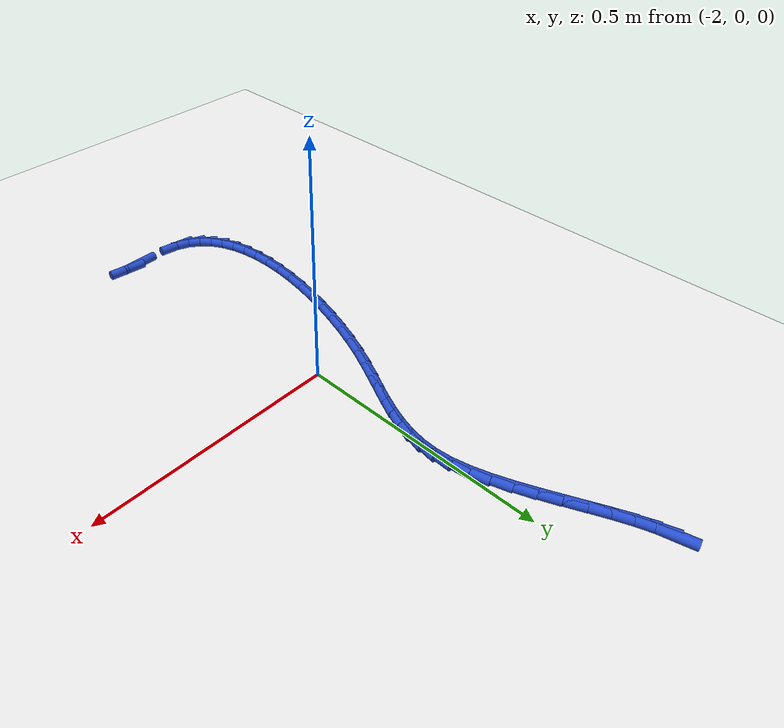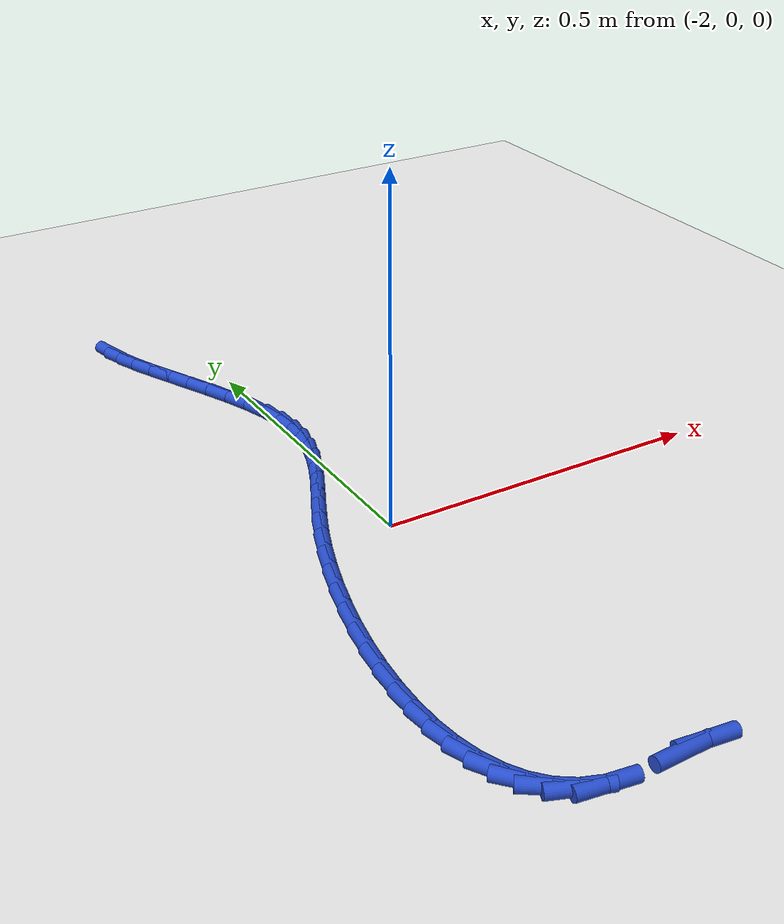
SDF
<sdf version="1.6">
 <world name="default">
  <model name="ground_plane">
   <static>1</static>
   <link name="link">
    <collision name="collision">
     <geometry><plane><normal>0 0 1</normal><size>100 100</size></plane></geometry>
     <surface><friction><ode><mu>100</mu><mu2>50</mu2></ode></friction></surface>
    </collision>
    <visual name="visual">
     <cast_shadows>0</cast_shadows>
     <geometry><plane><normal>0 0 1</normal><size>100 100</size></plane></geometry>
     <material>
      <script><uri>file://media/materials/scripts/gazebo.material</uri><name>Gazebo/WhiteGlow</name></script>
     </material>
    </visual>
   </link>
  </model>
  <model name="line">
   <link name="link_100">
    <pose>-2.1249075774094432 0.6737634439343126 0.01 0 1.57 -1.3303432976671499</pose>
    <collision name="collision">
     <geometry><cylinder><radius>0.01</radius><length>0.08</length></cylinder></geometry>
    </collision>
    <visual name="visual">
     <material>
      <script><name>Gazebo/Blue</name><uri>file://media/materials/scripts/gazebo.material</uri></script>
     </material>
     <geometry><cylinder><radius>0.01</radius><length>0.08</length></cylinder></geometry>
    </visual>
   </link>
   <link name="link_101">
    <pose>-2.118199168348817 0.6464041720958057 0.01 0 1.57 -1.2358035847093622</pose>
    <collision name="collision">
     <geometry><cylinder><radius>0.01</radius><length>0.08</length></cylinder></geometry>
    </collision>
    <visual name="visual">
     <material>
      <script><name>Gazebo/Blue</name><uri>file://media/materials/scripts/gazebo.material</uri></script>
     </material>
     <geometry><cylinder><radius>0.01</radius><length>0.08</length></cylinder></geometry>
    </visual>
   </link>
   <link name="link_102">
    <pose>-2.107620366164614 0.6160151809599722 0.01 0 1.57 -1.1809138422317131</pose>
    <collision name="collision">
     <geometry><cylinder><radius>0.01</radius><length>0.08</length></cylinder></geometry>
    </collision>
    <visual name="visual">
     <material>
      <script><name>Gazebo/Blue</name><uri>file://media/materials/scripts/gazebo.material</uri></script>
     </material>
     <geometry><cylinder><radius>0.01</radius><length>0.08</length></cylinder></geometry>
    </visual>
   </link>
   <link name="link_103">
    <pose>-2.094113227553329 0.5831445026352073 0.01 0 1.57 -1.1519765177857066</pose>
    <collision name="collision">
     <geometry><cylinder><radius>0.01</radius><length>0.08</length></cylinder></geometry>
    </collision>
    <visual name="visual">
     <material>
      <script><name>Gazebo/Blue</name><uri>file://media/materials/scripts/gazebo.material</uri></script>
     </material>
     <geometry><cylinder><radius>0.01</radius><length>0.08</length></cylinder></geometry>
    </visual>
   </link>
   <link name="link_104">
    <pose>-2.078619809211457 0.5483401692299068 0.01 0 1.57 -1.1421631834450297</pose>
    <collision name="collision">
     <geometry><cylinder><radius>0.01</radius><length>0.08</length></cylinder></geometry>
    </collision>
    <visual name="visual">
     <material>
      <script><name>Gazebo/Blue</name><uri>file://media/materials/scripts/gazebo.material</uri></script>
     </material>
     <geometry><cylinder><radius>0.01</radius><length>0.08</length></cylinder></geometry>
    </visual>
   </link>
   <link name="link_105">
    <pose>-2.0620821678354933 0.5121502128524668 0.01 0 1.57 -1.148449832072766</pose>
    <collision name="collision">
     <geometry><cylinder><radius>0.01</radius><length>0.08</length></cylinder></geometry>
    </collision>
    <visual name="visual">
     <material>
      <script><name>Gazebo/Blue</name><uri>file://media/materials/scripts/gazebo.material</uri></script>
     </material>
     <geometry><cylinder><radius>0.01</radius><length>0.08</length></cylinder></geometry>
    </visual>
   </link>
   <link name="link_106">
    <pose>-2.0454423601219314 0.4751226656112829 0.01 0 1.57 -1.1702849762444776</pose>
    <collision name="collision">
     <geometry><cylinder><radius>0.01</radius><length>0.08</length></cylinder></geometry>
    </collision>
    <visual name="visual">
     <material>
      <script><name>Gazebo/Blue</name><uri>file://media/materials/scripts/gazebo.material</uri></script>
     </material>
     <geometry><cylinder><radius>0.01</radius><length>0.08</length></cylinder></geometry>
    </visual>
   </link>
   <link name="link_107">
    <pose>-2.029642442767267 0.4378055596147507 0.01 0 1.57 -1.209166583709641</pose>
    <collision name="collision">
     <geometry><cylinder><radius>0.01</radius><length>0.08</length></cylinder></geometry>
    </collision>
    <visual name="visual">
     <material>
      <script><name>Gazebo/Blue</name><uri>file://media/materials/scripts/gazebo.material</uri></script>
     </material>
     <geometry><cylinder><radius>0.01</radius><length>0.08</length></cylinder></geometry>
    </visual>
   </link>
   <link name="link_108">
    <pose>-2.015624472467994 0.4007469269712654 0.01 0 1.57 -1.2687868199660628</pose>
    <collision name="collision">
     <geometry><cylinder><radius>0.01</radius><length>0.08</length></cylinder></geometry>
    </collision>
    <visual name="visual">
     <material>
      <script><name>Gazebo/Blue</name><uri>file://media/materials/scripts/gazebo.material</uri></script>
     </material>
     <geometry><cylinder><radius>0.01</radius><length>0.08</length></cylinder></geometry>
    </visual>
   </link>
   <link name="link_109">
    <pose>-2.004330505920607 0.36449479978922356 0.01 0 1.57 -1.355601116761794</pose>
    <collision name="collision">
     <geometry><cylinder><radius>0.01</radius><length>0.08</length></cylinder></geometry>
    </collision>
    <visual name="visual">
     <material>
      <script><name>Gazebo/Blue</name><uri>file://media/materials/scripts/gazebo.material</uri></script>
     </material>
     <geometry><cylinder><radius>0.01</radius><length>0.08</length></cylinder></geometry>
    </visual>
   </link>
   <link name="link_110">
    <pose>-1.9967025998216017 0.3295972101770207 0.01 0 1.57 -1.4762945306453026</pose>
    <collision name="collision">
     <geometry><cylinder><radius>0.01</radius><length>0.08</length></cylinder></geometry>
    </collision>
    <visual name="visual">
     <material>
      <script><name>Gazebo/Blue</name><uri>file://media/materials/scripts/gazebo.material</uri></script>
     </material>
     <geometry><cylinder><radius>0.01</radius><length>0.08</length></cylinder></geometry>
    </visual>
   </link>
   <link name="link_111">
    <pose>-1.9935679026583302 0.29652524577395184 0.01 0 1.57 1.5310366832754667</pose>
    <collision name="collision">
     <geometry><cylinder><radius>0.01</radius><length>0.08</length></cylinder></geometry>
    </collision>
    <visual name="visual">
     <material>
      <script><name>Gazebo/Blue</name><uri>file://media/materials/scripts/gazebo.material</uri></script>
     </material>
     <geometry><cylinder><radius>0.01</radius><length>0.08</length></cylinder></geometry>
    </visual>
   </link>
   <link name="link_112">
    <pose>-1.994817105990353 0.2651229269133066 0.01 0 1.57 1.404521503492447</pose>
    <collision name="collision">
     <geometry><cylinder><radius>0.01</radius><length>0.08</length></cylinder></geometry>
    </collision>
    <visual name="visual">
     <material>
      <script><name>Gazebo/Blue</name><uri>file://media/materials/scripts/gazebo.material</uri></script>
     </material>
     <geometry><cylinder><radius>0.01</radius><length>0.08</length></cylinder></geometry>
    </visual>
   </link>
   <link name="link_113">
    <pose>-1.9998844443393111 0.2349286226201526 0.01 0 1.57 1.2955645577942039</pose>
    <collision name="collision">
     <geometry><cylinder><radius>0.01</radius><length>0.08</length></cylinder></geometry>
    </collision>
    <visual name="visual">
     <material>
      <script><name>Gazebo/Blue</name><uri>file://media/materials/scripts/gazebo.material</uri></script>
     </material>
     <geometry><cylinder><radius>0.01</radius><length>0.08</length></cylinder></geometry>
    </visual>
   </link>
   <link name="link_114">
    <pose>-2.0082010835967683 0.205478647113255 0.01 0 1.57 1.210265350348706</pose>
    <collision name="collision">
     <geometry><cylinder><radius>0.01</radius><length>0.08</length></cylinder></geometry>
    </collision>
    <visual name="visual">
     <material>
      <script><name>Gazebo/Blue</name><uri>file://media/materials/scripts/gazebo.material</uri></script>
     </material>
     <geometry><cylinder><radius>0.01</radius><length>0.08</length></cylinder></geometry>
    </visual>
   </link>
   <link name="link_115">
    <pose>-2.0191981896542877 0.17630931461137922 0.01 0 1.57 1.150774348342374</pose>
    <collision name="collision">
     <geometry><cylinder><radius>0.01</radius><length>0.08</length></cylinder></geometry>
    </collision>
    <visual name="visual">
     <material>
      <script><name>Gazebo/Blue</name><uri>file://media/materials/scripts/gazebo.material</uri></script>
     </material>
     <geometry><cylinder><radius>0.01</radius><length>0.08</length></cylinder></geometry>
    </visual>
   </link>
   <link name="link_116">
    <pose>-2.0323069284034343 0.14695693933329176 0.01 0 1.57 1.1164723799438698</pose>
    <collision name="collision">
     <geometry><cylinder><radius>0.01</radius><length>0.08</length></cylinder></geometry>
    </collision>
    <visual name="visual">
     <material>
      <script><name>Gazebo/Blue</name><uri>file://media/materials/scripts/gazebo.material</uri></script>
     </material>
     <geometry><cylinder><radius>0.01</radius><length>0.08</length></cylinder></geometry>
    </visual>
   </link>
   <link name="link_117">
    <pose>-2.0469584657357722 0.11695783549775801 0.01 0 1.57 1.1053311813615219</pose>
    <collision name="collision">
     <geometry><cylinder><radius>0.01</radius><length>0.08</length></cylinder></geometry>
    </collision>
    <visual name="visual">
     <material>
      <script><name>Gazebo/Blue</name><uri>file://media/materials/scripts/gazebo.material</uri></script>
     </material>
     <geometry><cylinder><radius>0.01</radius><length>0.08</length></cylinder></geometry>
    </visual>
   </link>
   <link name="link_118">
    <pose>-2.0625839675428645 0.0858483173235437 0.01 0 1.57 1.114794394884622</pose>
    <collision name="collision">
     <geometry><cylinder><radius>0.01</radius><length>0.08</length></cylinder></geometry>
    </collision>
    <visual name="visual">
     <material>
      <script><name>Gazebo/Blue</name><uri>file://media/materials/scripts/gazebo.material</uri></script>
     </material>
     <geometry><cylinder><radius>0.01</radius><length>0.08</length></cylinder></geometry>
    </visual>
   </link>
   <link name="link_119">
    <pose>-2.078614599716275 0.05316469902941414 0.01 0 1.57 1.1421544162268218</pose>
    <collision name="collision">
     <geometry><cylinder><radius>0.01</radius><length>0.08</length></cylinder></geometry>
    </collision>
    <visual name="visual">
     <material>
      <script><name>Gazebo/Blue</name><uri>file://media/materials/scripts/gazebo.material</uri></script>
     </material>
     <geometry><cylinder><radius>0.01</radius><length>0.08</length></cylinder></geometry>
    </visual>
   </link>
   <link name="link_120">
    <pose>-2.094481528147568 0.018443294834135898 0.01 0 1.57 1.1819103346248963</pose>
    <collision name="collision">
     <geometry><cylinder><radius>0.01</radius><length>0.08</length></cylinder></geometry>
    </collision>
    <visual name="visual">
     <material>
      <script><name>Gazebo/Blue</name><uri>file://media/materials/scripts/gazebo.material</uri></script>
     </material>
     <geometry><cylinder><radius>0.01</radius><length>0.08</length></cylinder></geometry>
    </visual>
   </link>
   <link name="link_121">
    <pose>-2.109671284036992 -0.018627198270038794 0.01 0 1.57 1.2216963179029865</pose>
    <collision name="collision">
     <geometry><cylinder><radius>0.01</radius><length>0.08</length></cylinder></geometry>
    </collision>
    <visual name="visual">
     <material>
      <script><name>Gazebo/Blue</name><uri>file://media/materials/scripts/gazebo.material</uri></script>
     </material>
     <geometry><cylinder><radius>0.01</radius><length>0.08</length></cylinder></geometry>
    </visual>
   </link>
   <link name="link_122">
    <pose>-2.1239018234899416 -0.057721129036674326 0.01 0 1.57 1.2599854707291316</pose>
    <collision name="collision">
     <geometry><cylinder><radius>0.01</radius><length>0.08</length></cylinder></geometry>
    </collision>
    <visual name="visual">
     <material>
      <script><name>Gazebo/Blue</name><uri>file://media/materials/scripts/gazebo.material</uri></script>
     </material>
     <geometry><cylinder><radius>0.01</radius><length>0.08</length></cylinder></geometry>
    </visual>
   </link>
   <link name="link_123">
    <pose>-2.1369515608088983 -0.09834644621235637 0.01 0 1.57 1.298205040761885</pose>
    <collision name="collision">
     <geometry><cylinder><radius>0.01</radius><length>0.08</length></cylinder></geometry>
    </collision>
    <visual name="visual">
     <material>
      <script><name>Gazebo/Blue</name><uri>file://media/materials/scripts/gazebo.material</uri></script>
     </material>
     <geometry><cylinder><radius>0.01</radius><length>0.08</length></cylinder></geometry>
    </visual>
   </link>
   <link name="link_124">
    <pose>-2.1485989104789627 -0.1400110980410365 0.01 0 1.57 1.3376604346898597</pose>
    <collision name="collision">
     <geometry><cylinder><radius>0.01</radius><length>0.08</length></cylinder></geometry>
    </collision>
    <visual name="visual">
     <material>
      <script><name>Gazebo/Blue</name><uri>file://media/materials/scripts/gazebo.material</uri></script>
     </material>
     <geometry><cylinder><radius>0.01</radius><length>0.08</length></cylinder></geometry>
    </visual>
   </link>
   <link name="link_125">
    <pose>-2.158622286985236 -0.18222303276666751 0.01 0 1.57 1.3796785480434604</pose>
    <collision name="collision">
     <geometry><cylinder><radius>0.01</radius><length>0.08</length></cylinder></geometry>
    </collision>
    <visual name="visual">
     <material>
      <script><name>Gazebo/Blue</name><uri>file://media/materials/scripts/gazebo.material</uri></script>
     </material>
     <geometry><cylinder><radius>0.01</radius><length>0.08</length></cylinder></geometry>
    </visual>
   </link>
   <link name="link_126">
    <pose>-2.166800104812818 -0.22449019863319877 0.01 0 1.57 1.4257400413548438</pose>
    <collision name="collision">
     <geometry><cylinder><radius>0.01</radius><length>0.08</length></cylinder></geometry>
    </collision>
    <visual name="visual">
     <material>
      <script><name>Gazebo/Blue</name><uri>file://media/materials/scripts/gazebo.material</uri></script>
     </material>
     <geometry><cylinder><radius>0.01</radius><length>0.08</length></cylinder></geometry>
    </visual>
   </link>
   <link name="link_127">
    <pose>-2.1729107784468114 -0.2663205438845829 0.01 0 1.57 1.477624180236534</pose>
    <collision name="collision">
     <geometry><cylinder><radius>0.01</radius><length>0.08</length></cylinder></geometry>
    </collision>
    <visual name="visual">
     <material>
      <script><name>Gazebo/Blue</name><uri>file://media/materials/scripts/gazebo.material</uri></script>
     </material>
     <geometry><cylinder><radius>0.01</radius><length>0.08</length></cylinder></geometry>
    </visual>
   </link>
   <link name="link_128">
    <pose>-2.176732722372317 -0.3072220167647718 0.01 0 1.57 1.5375863915297738</pose>
    <collision name="collision">
     <geometry><cylinder><radius>0.01</radius><length>0.08</length></cylinder></geometry>
    </collision>
    <visual name="visual">
     <material>
      <script><name>Gazebo/Blue</name><uri>file://media/materials/scripts/gazebo.material</uri></script>
     </material>
     <geometry><cylinder><radius>0.01</radius><length>0.08</length></cylinder></geometry>
    </visual>
   </link>
   <link name="link_129">
    <pose>-2.1780443510744365 -0.34670256551771683 0.01 0 1.57 -1.5330085259669763</pose>
    <collision name="collision">
     <geometry><cylinder><radius>0.01</radius><length>0.08</length></cylinder></geometry>
    </collision>
    <visual name="visual">
     <material>
      <script><name>Gazebo/Blue</name><uri>file://media/materials/scripts/gazebo.material</uri></script>
     </material>
     <geometry><cylinder><radius>0.01</radius><length>0.08</length></cylinder></geometry>
    </visual>
   </link>
   <link name="link_130">
    <pose>-2.1766240790382714 -0.3842701383873698 0.01 0 1.57 -1.447045093255541</pose>
    <collision name="collision">
     <geometry><cylinder><radius>0.01</radius><length>0.08</length></cylinder></geometry>
    </collision>
    <visual name="visual">
     <material>
      <script><name>Gazebo/Blue</name><uri>file://media/materials/scripts/gazebo.material</uri></script>
     </material>
     <geometry><cylinder><radius>0.01</radius><length>0.08</length></cylinder></geometry>
    </visual>
   </link>
   <link name="link_131">
    <pose>-2.172250320748922 -0.41943268361768227 0.01 0 1.57 -1.340970117098494</pose>
    <collision name="collision">
     <geometry><cylinder><radius>0.01</radius><length>0.08</length></cylinder></geometry>
    </collision>
    <visual name="visual">
     <material>
      <script><name>Gazebo/Blue</name><uri>file://media/materials/scripts/gazebo.material</uri></script>
     </material>
     <geometry><cylinder><radius>0.01</radius><length>0.08</length></cylinder></geometry>
    </visual>
   </link>
   <link name="link_132">
    <pose>-2.1647014906914896 -0.4516981494526068 0.01 0 1.57 -1.2084823520105135</pose>
    <collision name="collision">
     <geometry><cylinder><radius>0.01</radius><length>0.08</length></cylinder></geometry>
    </collision>
    <visual name="visual">
     <material>
      <script><name>Gazebo/Blue</name><uri>file://media/materials/scripts/gazebo.material</uri></script>
     </material>
     <geometry><cylinder><radius>0.01</radius><length>0.08</length></cylinder></geometry>
    </visual>
   </link>
   <link name="link_133">
    <pose>-2.1537560033510763 -0.48057448413609316 0.01 0 1.57 -1.043222766152112</pose>
    <collision name="collision">
     <geometry><cylinder><radius>0.01</radius><length>0.08</length></cylinder></geometry>
    </collision>
    <visual name="visual">
     <material>
      <script><name>Gazebo/Blue</name><uri>file://media/materials/scripts/gazebo.material</uri></script>
     </material>
     <geometry><cylinder><radius>0.01</radius><length>0.08</length></cylinder></geometry>
    </visual>
   </link>
   <link name="link_134">
    <pose>-2.1391922732127826 -0.5055696359120938 0.01 0 1.57 -0.8421809165302269</pose>
    <collision name="collision">
     <geometry><cylinder><radius>0.01</radius><length>0.08</length></cylinder></geometry>
    </collision>
    <visual name="visual">
     <material>
      <script><name>Gazebo/Blue</name><uri>file://media/materials/scripts/gazebo.material</uri></script>
     </material>
     <geometry><cylinder><radius>0.01</radius><length>0.08</length></cylinder></geometry>
    </visual>
   </link>
   <link name="link_135">
    <pose>-2.1207887147617104 -0.5261915530245606 0.01 0 1.57 -0.6116559673144285</pose>
    <collision name="collision">
     <geometry><cylinder><radius>0.01</radius><length>0.08</length></cylinder></geometry>
    </collision>
    <visual name="visual">
     <material>
      <script><name>Gazebo/Blue</name><uri>file://media/materials/scripts/gazebo.material</uri></script>
     </material>
     <geometry><cylinder><radius>0.01</radius><length>0.08</length></cylinder></geometry>
    </visual>
   </link>
   <link name="link_136">
    <pose>-2.098323742482961 -0.5419481837174451 0.01 0 1.57 -0.3708037195009167</pose>
    <collision name="collision">
     <geometry><cylinder><radius>0.01</radius><length>0.08</length></cylinder></geometry>
    </collision>
    <visual name="visual">
     <material>
      <script><name>Gazebo/Blue</name><uri>file://media/materials/scripts/gazebo.material</uri></script>
     </material>
     <geometry><cylinder><radius>0.01</radius><length>0.08</length></cylinder></geometry>
    </visual>
   </link>
   <link name="link_137">
    <pose>-2.0715757708616342 -0.5523474762346988 0.01 0 1.57 -0.14566802238190582</pose>
    <collision name="collision">
     <geometry><cylinder><radius>0.01</radius><length>0.08</length></cylinder></geometry>
    </collision>
    <visual name="visual">
     <material>
      <script><name>Gazebo/Blue</name><uri>file://media/materials/scripts/gazebo.material</uri></script>
     </material>
     <geometry><cylinder><radius>0.01</radius><length>0.08</length></cylinder></geometry>
    </visual>
   </link>
   <link name="link_140">
    <pose>-1.9701402603979623 -0.5544843881444039 0.01 0 1.57 0.029085364389504292</pose>
    <collision name="collision">
     <geometry><cylinder><radius>0.01</radius><length>0.08</length></cylinder></geometry>
    </collision>
    <visual name="visual">
     <material>
      <script><name>Gazebo/Blue</name><uri>file://media/materials/scripts/gazebo.material</uri></script>
     </material>
     <geometry><cylinder><radius>0.01</radius><length>0.08</length></cylinder></geometry>
    </visual>
   </link>
   <link name="link_141">
    <pose>-1.9366223838277847 -0.5535092334951925 0.01 0 1.57 -0.11506392421114048</pose>
    <collision name="collision">
     <geometry><cylinder><radius>0.01</radius><length>0.08</length></cylinder></geometry>
    </collision>
    <visual name="visual">
     <material>
      <script><name>Gazebo/Blue</name><uri>file://media/materials/scripts/gazebo.material</uri></script>
     </material>
     <geometry><cylinder><radius>0.01</radius><length>0.08</length></cylinder></geometry>
    </visual>
   </link>
  </model>
 </world>
</sdf>
